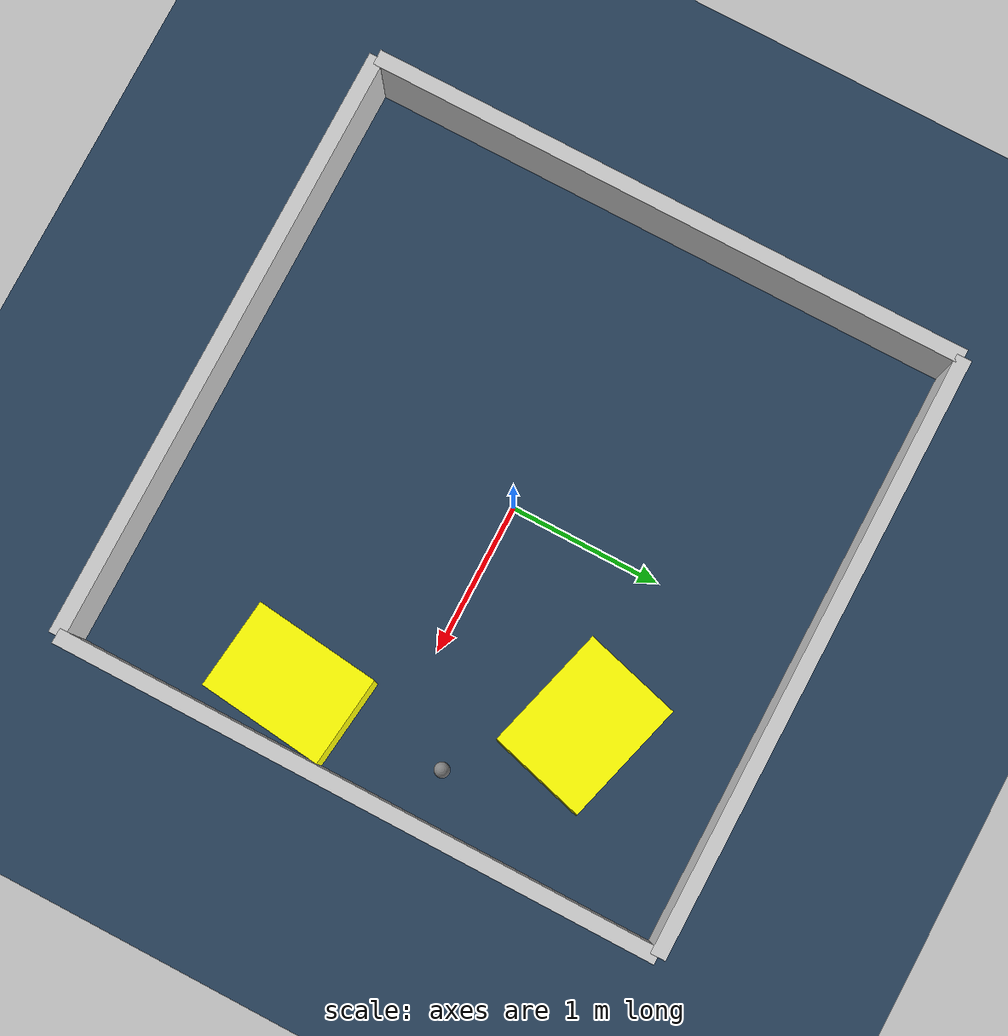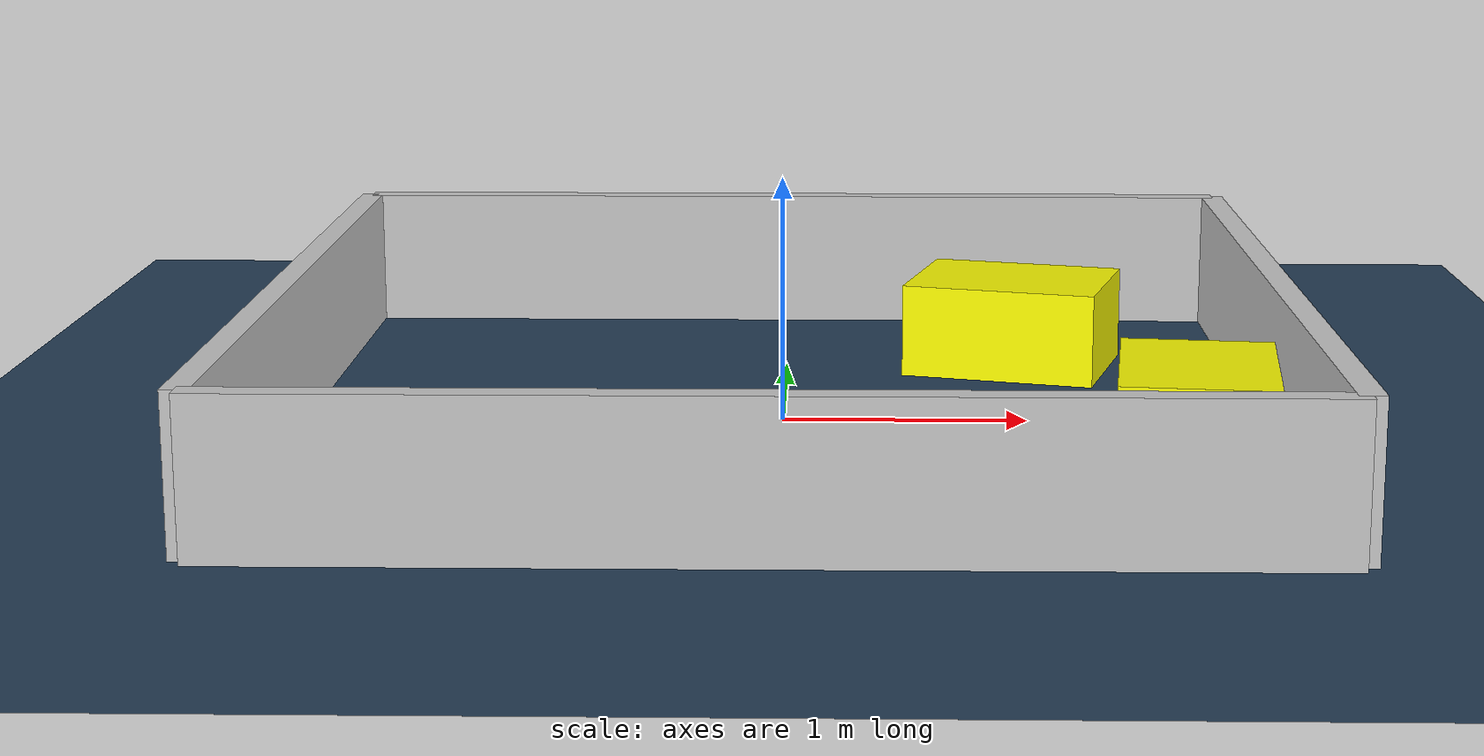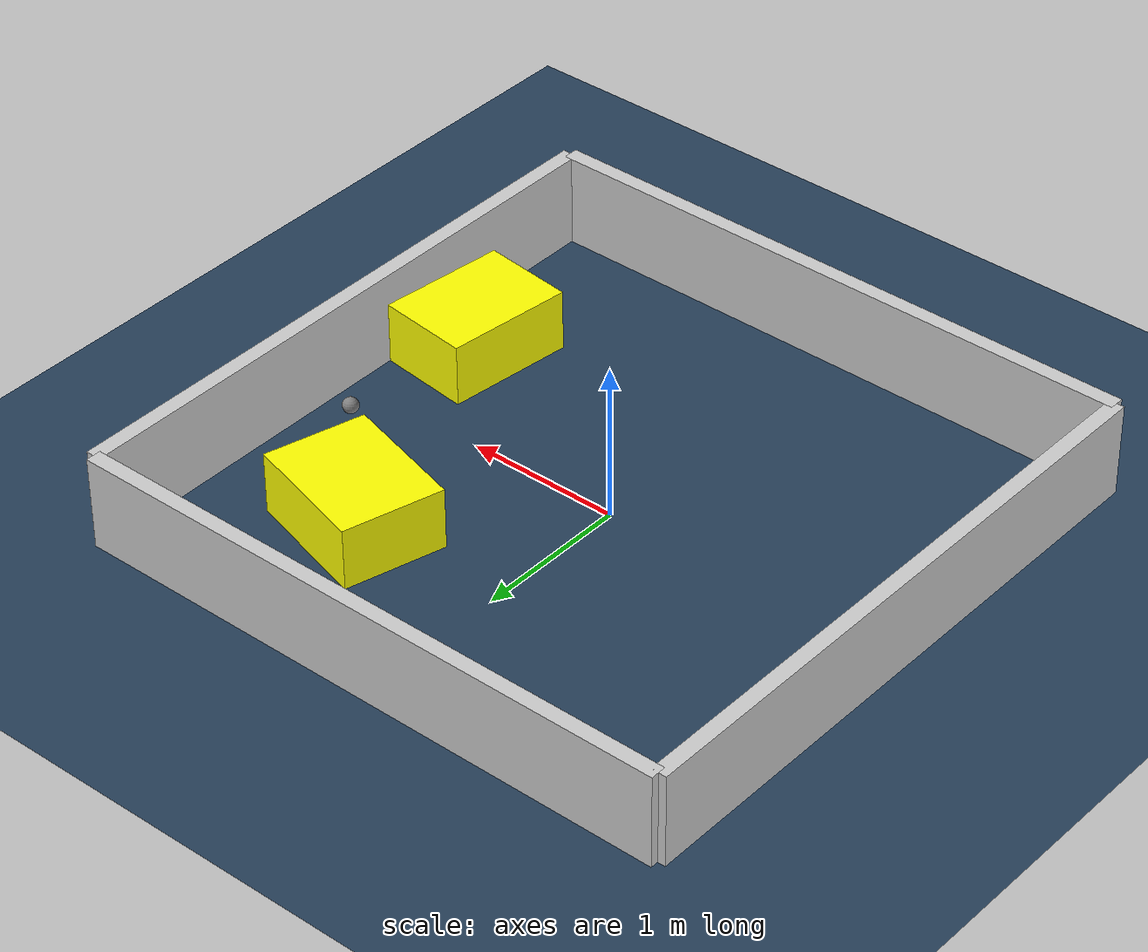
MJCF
<?xml version="1.0" ?>
<mujoco model="generated_environment">
  <option timestep="0.01" integrator="RK4" cone="elliptic"/>
  <default>
    <geom density="1"/>
  </default>
  <asset>
    <texture builtin="gradient" height="3072" rgb1="0.3 0.5 0.7" rgb2="0 0 0" type="skybox" width="512"/>
    <texture builtin="checker" height="300" mark="edge" markrgb="0.8 0.8 0.8" name="groundplane" rgb1="0.2 0.3 0.4" rgb2="0.1 0.2 0.3" type="2d" width="300"/>
    <material name="groundplane" reflectance="0.2" texrepeat="5 5" texture="groundplane" texuniform="true"/>
    <material name="robot" rgba="0.0 1.0 0.0 1"/>
  </asset>
  <worldbody>
    <light dir="0 0 -1" directional="true" pos="0 0 1.5"/>
    <geom condim="4" friction="1.0 0.005 0.001" material="groundplane" name="floor" size="0 0 0.05" type="plane"/>
    <body name="walls">
      <geom name="wall_1" condim="4" pos="-2.0 0.0 0.3" rgba="0.800000011920929 0.800000011920929 0.800000011920929 1.0" size="0.05 2.0 0.3" type="box"/>
      <geom name="wall_2" condim="4" pos="2.0 0.0 0.3" rgba="0.800000011920929 0.800000011920929 0.800000011920929 1.0" size="0.05 2.0 0.3" type="box"/>
      <geom name="wall_3" condim="4" pos="0.0 -2.0 0.3" rgba="0.800000011920929 0.800000011920929 0.800000011920929 1.0" size="2.0 0.05 0.3" type="box"/>
      <geom name="wall_4" condim="4" pos="0.0 2.0 0.3" rgba="0.800000011920929 0.800000011920929 0.800000011920929 1.0" size="2.0 0.05 0.3" type="box"/>
    </body>
    <body name="robot">
      <joint name="joint_x" type="slide" pos="0 0 0" axis="1 0 0"/>
      <joint name="joint_y" type="slide" pos="0 0 0" axis="0 1 0"/>
      <geom name="robot" type="sphere" pos="1.630006820648346 0.3711606702325372 0.2" size="0.05" mass="5." friction="1.0 0.005 0.0001" condim="4"/>
      <site name="sensor_ball"/>
    </body>
    <body name="obstacle_1_movable">
      <geom name="obstacle_1_movable" condim="4" pos="0.9996998530066057 1.0072069446082659 0.2" euler="0 0 74.57486747311157" friction="1.0 0.005 0.001" rgba="1 1 0 1" size="0.3286939556735213 0.4204795644908956 0.2" type="box" mass="0.1"/>
      <joint type="free"/>
    </body>
    <body name="obstacle_2_movable">
      <geom name="obstacle_2_movable" condim="4" pos="1.6015492116706604 -0.676970774448104 0.2" euler="0 0 173.39322001042513" friction="1.0 0.005 0.001" rgba="1 1 0 1" size="0.30193214295997406 0.4169349338190351 0.2" type="box" mass="0.1"/>
      <joint type="free"/>
    </body>
  </worldbody>
  <actuator>
    <motor name="actuator_x" joint="joint_x" gear="1" ctrlrange="-1 1"/>
    <motor name="actuator_y" joint="joint_y" gear="1" ctrlrange="-1 1"/>
  </actuator>
</mujoco>
